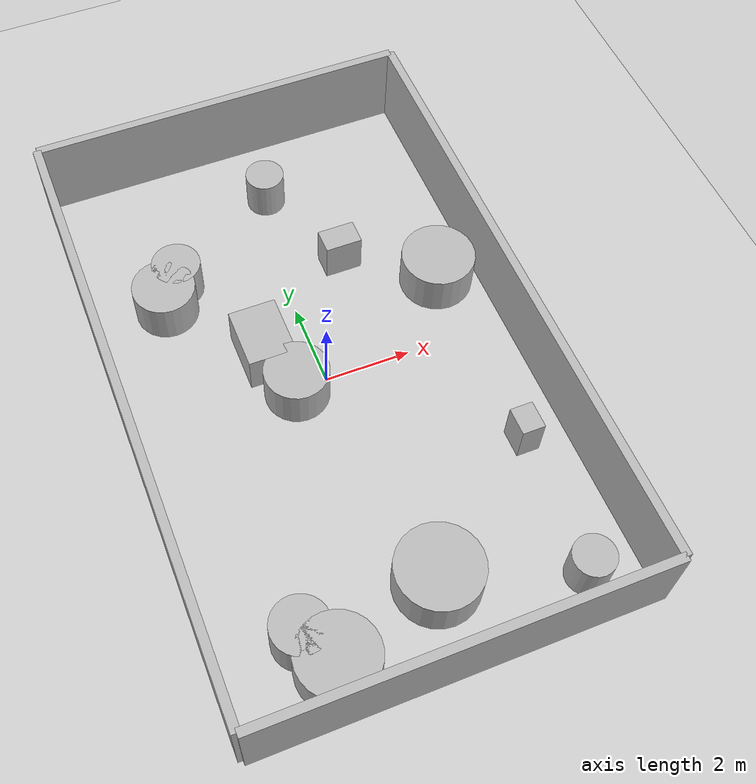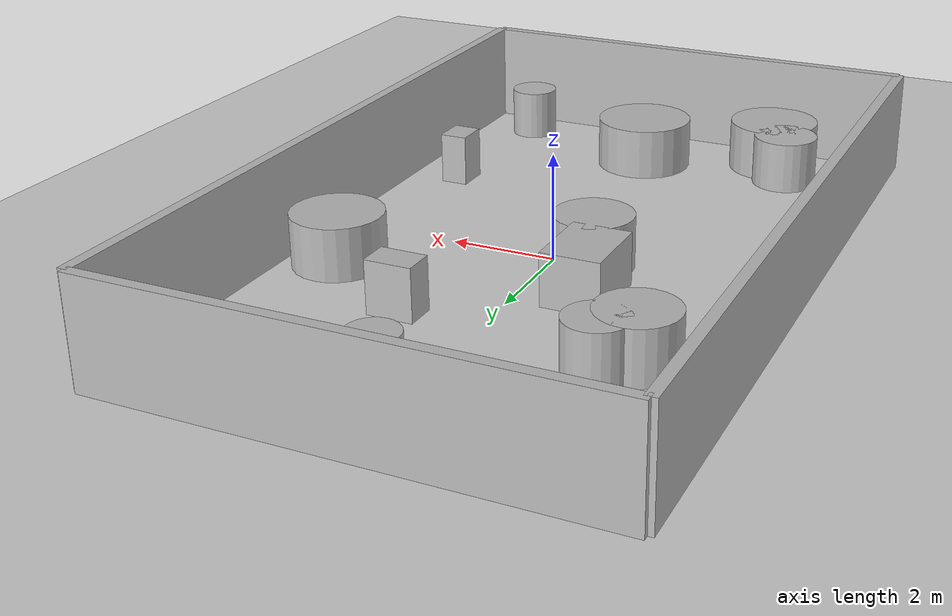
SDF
<?xml version="1.0"?>
<sdf version="1.6">
  <world name="env_69">

    <include><uri>model://ground_plane</uri></include>
    <include><uri>model://sun</uri></include>

    <!-- WALLS -->
    <model name="wall_north"><static>true</static><pose>0 7.223588623909262 1 0 0 0</pose>
      <link name="link"><collision name="collision">
        <geometry><box><size>9.034816730326616 0.2 2</size></box></geometry>
      </collision><visual name="visual">
        <geometry><box><size>9.034816730326616 0.2 2</size></box></geometry>
      </visual></link>
    </model>

    <model name="wall_south"><static>true</static><pose>0 -7.223588623909262 1 0 0 0</pose>
      <link name="link"><collision name="collision">
        <geometry><box><size>9.034816730326616 0.2 2</size></box></geometry>
      </collision><visual name="visual">
        <geometry><box><size>9.034816730326616 0.2 2</size></box></geometry>
      </visual></link>
    </model>

    <model name="wall_east"><static>true</static><pose>4.517408365163308 0 1 0 0 1.57</pose>
      <link name="link"><collision name="collision">
        <geometry><box><size>14.447177247818525 0.2 2</size></box></geometry>
      </collision><visual name="visual">
        <geometry><box><size>14.447177247818525 0.2 2</size></box></geometry>
      </visual></link>
    </model>

    <model name="wall_west"><static>true</static><pose>-4.517408365163308 0 1 0 0 1.57</pose>
      <link name="link"><collision name="collision">
        <geometry><box><size>14.447177247818525 0.2 2</size></box></geometry>
      </collision><visual name="visual">
        <geometry><box><size>14.447177247818525 0.2 2</size></box></geometry>
      </visual></link>
    </model>

    <!-- SENSOR -->

    <model name="lidar_sensor">
      <static>true</static>
      <pose>2.2103051287855804 5.742148065684943 0.4 0 0 0</pose>
      <link name="link">
        <sensor name="lidar" type="ray">
          <pose>0 0 0 0 0 0</pose>
          <visualize>true</visualize>
          <always_on>true</always_on>
          <update_rate>10</update_rate>
          <ray>
            <scan><horizontal>
              <samples>180</samples>
              <resolution>1</resolution>
              <min_angle>-3.14159</min_angle>
              <max_angle>3.14159</max_angle>
            </horizontal></scan>
            <range><min>0.15</min><max>20.0</max><resolution>0.01</resolution></range>
          </ray>
          <plugin name="lidar_plugin" filename="liblidar_plugin.so"/>
        </sensor>
      </link>
    </model>

    <!-- OBSTACLES -->

    <model name="obstacle_0">
      <static>true</static>
      <pose>3.4156323093224223 -2.991079707369802 0.5 0 0 0</pose>
      <link name="link">
        <collision name="collision">
          <geometry><box><size>0.53 0.64 1.0</size></box></geometry>
        </collision>
        <visual name="visual">
          <geometry><box><size>0.53 0.64 1.0</size></box></geometry>
        </visual>
      </link>
    </model>

    <model name="obstacle_1">
      <static>true</static>
      <pose>-2.7915849837112656 3.1148265676265607 0.5 0 0 0</pose>
      <link name="link">
        <collision name="collision">
          <geometry><cylinder><radius>0.73</radius><length>1.0</length></cylinder></geometry>
        </collision>
        <visual name="visual">
          <geometry><cylinder><radius>0.73</radius><length>1.0</length></cylinder></geometry>
        </visual>
      </link>
    </model>

    <model name="obstacle_2">
      <static>true</static>
      <pose>3.4392782876224297 1.6659413551689886 0.5 0 0 0</pose>
      <link name="link">
        <collision name="collision">
          <geometry><cylinder><radius>0.86</radius><length>1.0</length></cylinder></geometry>
        </collision>
        <visual name="visual">
          <geometry><cylinder><radius>0.86</radius><length>1.0</length></cylinder></geometry>
        </visual>
      </link>
    </model>

    <model name="obstacle_3">
      <static>true</static>
      <pose>0.4904552468603107 5.425079445815105 0.5 0 0 0</pose>
      <link name="link">
        <collision name="collision">
          <geometry><cylinder><radius>0.46</radius><length>1.0</length></cylinder></geometry>
        </collision>
        <visual name="visual">
          <geometry><cylinder><radius>0.46</radius><length>1.0</length></cylinder></geometry>
        </visual>
      </link>
    </model>

    <model name="obstacle_4">
      <static>true</static>
      <pose>-1.1069144462895264 1.1371739018550437 0.5 0 0 0</pose>
      <link name="link">
        <collision name="collision">
          <geometry><box><size>1.1 1.43 1.0</size></box></geometry>
        </collision>
        <visual name="visual">
          <geometry><box><size>1.1 1.43 1.0</size></box></geometry>
        </visual>
      </link>
    </model>

    <model name="obstacle_5">
      <static>true</static>
      <pose>0.30928699677456173 -5.356530070016248 0.5 0 0 0</pose>
      <link name="link">
        <collision name="collision">
          <geometry><cylinder><radius>0.95</radius><length>1.0</length></cylinder></geometry>
        </collision>
        <visual name="visual">
          <geometry><cylinder><radius>0.95</radius><length>1.0</length></cylinder></geometry>
        </visual>
      </link>
    </model>

    <model name="obstacle_6">
      <static>true</static>
      <pose>1.4952039331555147 2.9929833789177325 0.5 0 0 0</pose>
      <link name="link">
        <collision name="collision">
          <geometry><box><size>0.87 0.58 1.0</size></box></geometry>
        </collision>
        <visual name="visual">
          <geometry><box><size>0.87 0.58 1.0</size></box></geometry>
        </visual>
      </link>
    </model>

    <model name="obstacle_7">
      <static>true</static>
      <pose>-2.223100655636804 -6.266804919400125 0.5 0 0 0</pose>
      <link name="link">
        <collision name="collision">
          <geometry><cylinder><radius>0.89</radius><length>1.0</length></cylinder></geometry>
        </collision>
        <visual name="visual">
          <geometry><cylinder><radius>0.89</radius><length>1.0</length></cylinder></geometry>
        </visual>
      </link>
    </model>

    <model name="obstacle_8">
      <static>true</static>
      <pose>-0.7407578351911779 -0.07945648930062532 0.5 0 0 0</pose>
      <link name="link">
        <collision name="collision">
          <geometry><cylinder><radius>0.74</radius><length>1.0</length></cylinder></geometry>
        </collision>
        <visual name="visual">
          <geometry><cylinder><radius>0.74</radius><length>1.0</length></cylinder></geometry>
        </visual>
      </link>
    </model>

    <model name="obstacle_9">
      <static>true</static>
      <pose>3.2624050449248134 -6.2685786262843575 0.5 0 0 0</pose>
      <link name="link">
        <collision name="collision">
          <geometry><cylinder><radius>0.47</radius><length>1.0</length></cylinder></geometry>
        </collision>
        <visual name="visual">
          <geometry><cylinder><radius>0.47</radius><length>1.0</length></cylinder></geometry>
        </visual>
      </link>
    </model>

    <model name="obstacle_10">
      <static>true</static>
      <pose>-2.329024829800818 3.636221172332296 0.5 0 0 0</pose>
      <link name="link">
        <collision name="collision">
          <geometry><cylinder><radius>0.57</radius><length>1.0</length></cylinder></geometry>
        </collision>
        <visual name="visual">
          <geometry><cylinder><radius>0.57</radius><length>1.0</length></cylinder></geometry>
        </visual>
      </link>
    </model>

    <model name="obstacle_11">
      <static>true</static>
      <pose>-2.691078693976011 -5.468481979119177 0.5 0 0 0</pose>
      <link name="link">
        <collision name="collision">
          <geometry><cylinder><radius>0.63</radius><length>1.0</length></cylinder></geometry>
        </collision>
        <visual name="visual">
          <geometry><cylinder><radius>0.63</radius><length>1.0</length></cylinder></geometry>
        </visual>
      </link>
    </model>

  </world>
</sdf>
